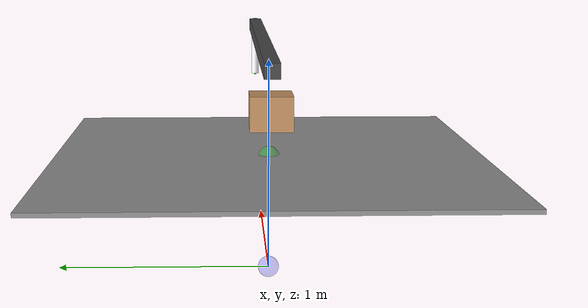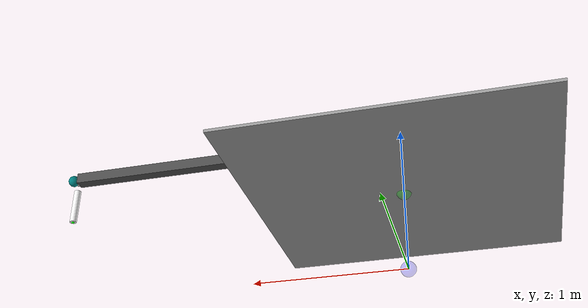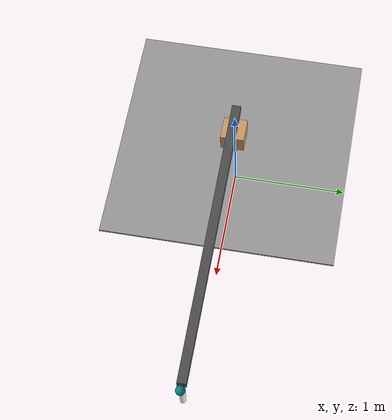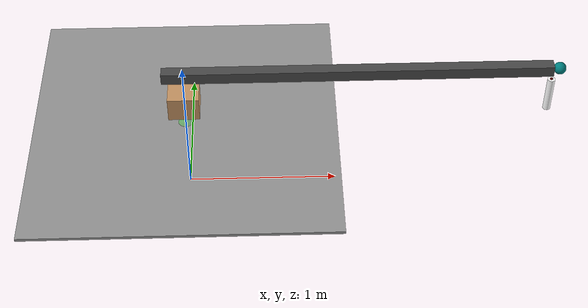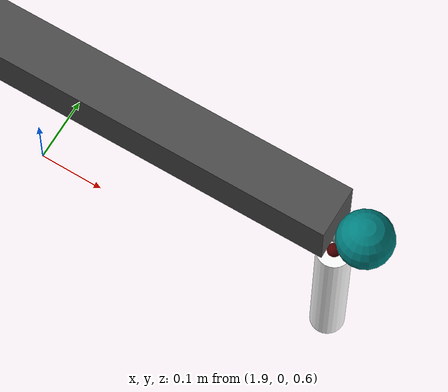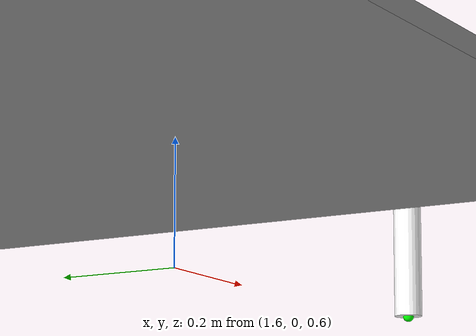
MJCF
<mujoco>
 <option integrator="implicitfast" timestep="0.01">
  <flag energy="enable" warmstart="enable" contact="disable"/>
 </option>
 <compiler autolimits="true" angle="radian"/>

  <worldbody>
    <light diffuse=".75 .75 .75" pos="0 0 10" dir="0 0 -1" castshadow="false"/>
    <!-- geom type="plane" size="5 5 0.1" rgba=".7 .7 .6 1"/ -->

    <body name="base" pos="0 0 0.54" euler="0 0 0" gravcomp="1">
      <site name="base_imu" pos="0 0 0" size="0.01"/>
      <joint name="platform-x-slider" type="slide" axis="1 0 0"/>
      <joint name="platform-y-slider" type="slide" axis="0 1 0"/>
      <joint name="platform-z-slider" type="slide" axis="0 0 1" ref="0"/>
      <joint name="platform-x-hinge" type="hinge" axis="1 0 0"/>
      <joint name="platform-y-hinge" type="hinge" axis="0 1 0"/>
      <joint name="platform-z-hinge" type="hinge" axis="0 0 1"/>

      <geom name="base_geom" type="box" size="1 1 .01" rgba=".6 .6 .6 1"/>

      <body name="cab" pos="0.0 -0.01 0.216" gravcomp="1">
        <joint name="slew-joint" type="hinge" axis="0 0 1" pos="0 0 -.5" range="-1.3 1.3" armature="0.0" damping="0.0"/>
        <geom name="cab_geom" type="box" size=".1015 .1015 .0825" rgba=".8 .6 .4 1" mass="7.935"/>

        <site name="cab_imu" pos="0 0 0" size="0.01"/>

        <body name="boom" pos="1.125 0 0.205" gravcomp="1">
          <joint name="luff-joint" type="hinge" pos="-1.125 0 -0.205" axis="0 -1 0" range="0.001 1.2" armature="7110.0" damping="0.4454"/>
          <geom name="boom_geom" type="box" size="1.259 0.038 0.038" rgba=".3 .3 .3 1" mass="1.834"/>
          <geom name="front_pulley_geom" pos="1.3017 0 0" type="sphere" size="0.04" rgba="0 .5 .5 1" mass="0.380"/>
          <site name="boom_imu" pos="0 0 0" size="0.01"/>

          <site name="boom_tip_site" pos="1.259 0 -0.038" size="0.01"/>
          <body name="boom_tip" pos="1.259 0 -0.038" gravcomp="1">
          <geom name="boom_tip_geom" pos="0 0 0" type="sphere" size="0.01" rgba=".3 .3 .3 1" mass="0.00001"/>

            <joint name="boom-tip-x-rot-hinge" type="hinge" axis="1 0 0" stiffness="0"  range="-1.5 1.5" damping="0.3014"  armature="6.061e-11"/>
            <joint name="boom-tip-y-rot-hinge" type="hinge" axis="0 1 0" stiffness="0"  range="-1.5 1.5" damping="0.3014"  armature="6.061e-11"/>
            <joint name="hoist-slider" type="slide" axis="0 0 -1" limited="true" range="0.07 2.0" armature="144.1" damping="1.373e-15"/>

            <body name="payload_connector" pos="0 0 -.0535"> <!-- payload_tip body -->
              <geom name="payload_connector_geom" type="sphere" size="0.01" rgba=".3 0 0 1" mass="0.0000000001" contype="0" conaffinity="0"/> <!-- p_tip_geom-->

              <joint name="p-tip-eta-hinge" type="hinge" axis="1 0 0" damping="0.0001" limited="true" range="-1.5 1.5"/>
              <joint name="p-tip-sigma-hinge" type="hinge" axis="0 1 0" damping="0.0001" limited="true" range="-1.5 1.5"/>

              <body name="payload"> <!-- smaller payload black -->
                <geom name="payload_geom" pos="0 0 -0.125" type="cylinder" size="0.025 0.125" rgba="1 1 1 1" mass=".178"/>

                <site name="payload_top" pos="0 0 0" size="0.01" rgba="1 0 0 1"/>
                <site name="payload_center" pos="0 0 -0.125" size="0.01" rgba="0 0 1 1"/>
                <site name="payload_bottom" pos="0 0 -0.250" size="0.01" rgba="0 1 0 1"/>
              </body>
            </body>
          </body>
        </body>
      </body>

      <site name="cab_bottom" pos="0.0 -0.01 0" size="0.01" rgba="1 0 0 1"/>

      <body name="target_marker" pos="0 0 0">
        <site size=".05" rgba="0 1 0 .25"/>
      </body>

    </body>

    <body name="goal_marker" pos="0 0 0" mocap="true">
      <site size=".05" rgba="0 0 1 .25"/>
    </body>

  </worldbody>

  <actuator>
      <velocity name="slew-velocity" joint="slew-joint" ctrlrange="-.7854 .7854" kv="3000"/>
      <velocity name="luff-velocity" joint="luff-joint" ctrlrange="-.2618 .2618" kv="14020"/>
      <velocity name="hoist-velocity" joint="hoist-slider" ctrlrange="-.8 .8" kv="586"/>

      <position name="platform-x-position" joint="platform-x-slider" ctrlrange="-1 1" kp="1000" kv="500"/>
      <position name="platform-y-position" joint="platform-y-slider" ctrlrange="-1 1" kp="1000" kv="500"/>
      <position name="platform-z-position" joint="platform-z-slider" ctrlrange="-1 1" kp="1000" kv="500"/>
      <position name="platform-x-rot" joint="platform-x-hinge" ctrlrange="-1 1" kp="5000" kv="500"/>
      <position name="platform-y-rot" joint="platform-y-hinge" ctrlrange="-1 1" kp="5000" kv="500"/>
      <position name="platform-z-rot" joint="platform-z-hinge" ctrlrange="-1 1" kp="5000" kv="500"/>
  </actuator>

</mujoco>
